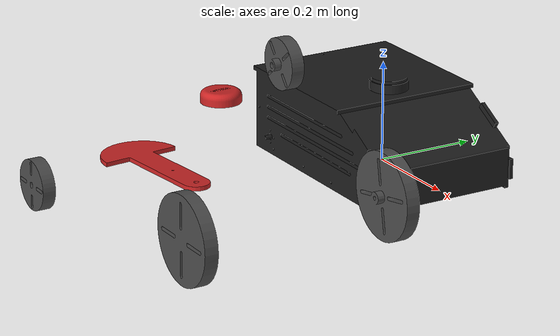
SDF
<?xml version='1.0'?>
<sdf version='1.7'>
  <model name='metal_detector_bot_sdf'>
    <link name='base_link'>
      <inertial>
        <pose>0.324698 -0.519407 0.192859 0 -0 0</pose>
        <mass>3.68397</mass>
        <inertia>
          <ixx>0.0209131</ixx>
          <ixy>6.08657e-07</ixy>
          <ixz>-0.00129762</ixz>
          <iyy>0.0391259</iyy>
          <iyz>1.5993e-08</iyz>
          <izz>0.0539535</izz>
        </inertia>
      </inertial>
      <self_collide>0</self_collide>
      <enable_wind>0</enable_wind>
      <kinematic>0</kinematic>
      <pose>0 0 0 0 -0 0</pose>
      <visual name='base_link_visual'>
        <pose>0 0 0 0 -0 0</pose>
        <geometry>
          <mesh>
            <scale>1 1 1</scale>
            <uri>/home/drbilal/catkin_ws/src/metal_detector_bot_urdf/meshes/base_link.STL</uri>
          </mesh>
        </geometry>
        <material>
          <script>
            <name>Gazebo/Black</name>
            <uri>__default__</uri>
          </script>
        </material>
        <transparency>0</transparency>
        <cast_shadows>1</cast_shadows>
      </visual>
      <collision name='base_link_collision'>
        <laser_retro>0</laser_retro>
        <max_contacts>10</max_contacts>
        <pose>0 0 0 0 -0 0</pose>
        <geometry>
          <mesh>
            <uri>/home/drbilal/catkin_ws/src/metal_detector_bot_urdf/meshes/base_link.STL</uri>
            <scale>1 1 1</scale>
          </mesh>
        </geometry>
        <surface>
          <friction>
            <ode>
              <mu>1</mu>
              <mu2>1</mu2>
              <fdir1>0 0 0</fdir1>
              <slip1>0</slip1>
              <slip2>0</slip2>
            </ode>
            <torsional>
              <coefficient>1</coefficient>
              <patch_radius>0</patch_radius>
              <surface_radius>0</surface_radius>
              <use_patch_radius>1</use_patch_radius>
              <ode>
                <slip>0</slip>
              </ode>
            </torsional>
          </friction>
          <bounce>
            <restitution_coefficient>0</restitution_coefficient>
            <threshold>1e+06</threshold>
          </bounce>
          <contact>
            <collide_without_contact>0</collide_without_contact>
            <collide_without_contact_bitmask>1</collide_without_contact_bitmask>
            <collide_bitmask>1</collide_bitmask>
            <ode>
              <soft_cfm>0</soft_cfm>
              <soft_erp>0.2</soft_erp>
              <kp>1e+13</kp>
              <kd>1</kd>
              <max_vel>0.01</max_vel>
              <min_depth>0</min_depth>
            </ode>
            <bullet>
              <split_impulse>1</split_impulse>
              <split_impulse_penetration_threshold>-0.01</split_impulse_penetration_threshold>
              <soft_cfm>0</soft_cfm>
              <soft_erp>0.2</soft_erp>
              <kp>1e+13</kp>
              <kd>1</kd>
            </bullet>
          </contact>
        </surface>
      </collision>
    </link>
    <link name='Back_left_wheel_link'>
      <pose>0.48383 -0.66997 0.14637 1.5708 -0 0</pose>
      <inertial>
        <pose>0 0 0.026259 0 -0 0</pose>
        <mass>0.498306</mass>
        <inertia>
          <ixx>0.000864069</ixx>
          <ixy>-1.53512e-21</ixy>
          <ixz>-3.3895e-20</ixz>
          <iyy>0.000864069</iyy>
          <iyz>-1.03163e-21</iyz>
          <izz>0.00167127</izz>
        </inertia>
      </inertial>
      <self_collide>0</self_collide>
      <enable_wind>0</enable_wind>
      <kinematic>0</kinematic>
      <visual name='Back_left_wheel_link_visual'>
        <pose>0 0 0 0 -0 0</pose>
        <geometry>
          <mesh>
            <scale>1 1 1</scale>
            <uri>/home/drbilal/catkin_ws/src/metal_detector_bot_urdf/meshes/Back_left_wheel_link.STL</uri>
          </mesh>
        </geometry>
        <material>
          <script>
            <name>Gazebo/DarkGrey</name>
            <uri>__default__</uri>
          </script>
        </material>
        <transparency>0</transparency>
        <cast_shadows>1</cast_shadows>
      </visual>
      <collision name='Back_left_wheel_link_collision'>
        <laser_retro>0</laser_retro>
        <max_contacts>10</max_contacts>
        <pose>0 0 0 0 -0 0</pose>
        <geometry>
          <mesh>
            <uri>/home/drbilal/catkin_ws/src/metal_detector_bot_urdf/meshes/Back_left_wheel_link.STL</uri>
            <scale>1 1 1</scale>
          </mesh>
        </geometry>
        <surface>
          <friction>
            <ode>
              <mu>1</mu>
              <mu2>1</mu2>
              <fdir1>0 0 0</fdir1>
              <slip1>0</slip1>
              <slip2>0</slip2>
            </ode>
            <torsional>
              <coefficient>1</coefficient>
              <patch_radius>0</patch_radius>
              <surface_radius>0</surface_radius>
              <use_patch_radius>1</use_patch_radius>
              <ode>
                <slip>0</slip>
              </ode>
            </torsional>
          </friction>
          <bounce>
            <restitution_coefficient>0</restitution_coefficient>
            <threshold>1e+06</threshold>
          </bounce>
          <contact>
            <collide_without_contact>0</collide_without_contact>
            <collide_without_contact_bitmask>1</collide_without_contact_bitmask>
            <collide_bitmask>1</collide_bitmask>
            <ode>
              <soft_cfm>0</soft_cfm>
              <soft_erp>0.2</soft_erp>
              <kp>1e+13</kp>
              <kd>1</kd>
              <max_vel>0.01</max_vel>
              <min_depth>0</min_depth>
            </ode>
            <bullet>
              <split_impulse>1</split_impulse>
              <split_impulse_penetration_threshold>-0.01</split_impulse_penetration_threshold>
              <soft_cfm>0</soft_cfm>
              <soft_erp>0.2</soft_erp>
              <kp>1e+13</kp>
              <kd>1</kd>
            </bullet>
          </contact>
        </surface>
      </collision>
    </link>
    <link name='Back_right_wheel_link'>
      <pose>0.48383 -0.32952 0.14637 1.5708 -1.3963 -3.14159</pose>
      <inertial>
        <pose>-0 0 -0.012891 0 -0 0</pose>
        <mass>0.498306</mass>
        <inertia>
          <ixx>0.000864069</ixx>
          <ixy>2.71051e-20</ixy>
          <ixz>-9.34239e-20</ixz>
          <iyy>0.000864069</iyy>
          <iyz>6.50888e-19</iyz>
          <izz>0.00167127</izz>
        </inertia>
      </inertial>
      <self_collide>0</self_collide>
      <enable_wind>0</enable_wind>
      <kinematic>0</kinematic>
      <visual name='Back_right_wheel_link_visual'>
        <pose>0 0 0 0 -0 0</pose>
        <geometry>
          <mesh>
            <scale>1 1 1</scale>
            <uri>/home/drbilal/catkin_ws/src/metal_detector_bot_urdf/meshes/Back_right_wheel_link.STL</uri>
          </mesh>
        </geometry>
        <material>
          <script>
            <name>Gazebo/DarkGrey</name>
            <uri>__default__</uri>
          </script>
        </material>
        <transparency>0</transparency>
        <cast_shadows>1</cast_shadows>
      </visual>
      <collision name='Back_right_wheel_link_collision'>
        <laser_retro>0</laser_retro>
        <max_contacts>10</max_contacts>
        <pose>0 0 0 0 -0 0</pose>
        <geometry>
          <mesh>
            <uri>/home/drbilal/catkin_ws/src/metal_detector_bot_urdf/meshes/Back_right_wheel_link.STL</uri>
            <scale>1 1 1</scale>
          </mesh>
        </geometry>
        <surface>
          <friction>
            <ode>
              <mu>1</mu>
              <mu2>1</mu2>
              <fdir1>0 0 0</fdir1>
              <slip1>0</slip1>
              <slip2>0</slip2>
            </ode>
            <torsional>
              <coefficient>1</coefficient>
              <patch_radius>0</patch_radius>
              <surface_radius>0</surface_radius>
              <use_patch_radius>1</use_patch_radius>
              <ode>
                <slip>0</slip>
              </ode>
            </torsional>
          </friction>
          <bounce>
            <restitution_coefficient>0</restitution_coefficient>
            <threshold>1e+06</threshold>
          </bounce>
          <contact>
            <collide_without_contact>0</collide_without_contact>
            <collide_without_contact_bitmask>1</collide_without_contact_bitmask>
            <collide_bitmask>1</collide_bitmask>
            <ode>
              <soft_cfm>0</soft_cfm>
              <soft_erp>0.2</soft_erp>
              <kp>1e+13</kp>
              <kd>1</kd>
              <max_vel>0.01</max_vel>
              <min_depth>0</min_depth>
            </ode>
            <bullet>
              <split_impulse>1</split_impulse>
              <split_impulse_penetration_threshold>-0.01</split_impulse_penetration_threshold>
              <soft_cfm>0</soft_cfm>
              <soft_erp>0.2</soft_erp>
              <kp>1e+13</kp>
              <kd>1</kd>
            </bullet>
          </contact>
        </surface>
      </collision>
    </link>
    <link name='Front_left_wheel_link'>
      <pose>0.13457 -0.68787 0.11335 1.5708 -0 0</pose>
      <inertial>
        <pose>-0 -0 0.026011 0 -0 0</pose>
        <mass>0.172261</mass>
        <inertia>
          <ixx>0.000112056</ixx>
          <ixy>1.02659e-21</ixy>
          <ixz>5.48525e-22</ixz>
          <iyy>0.000112056</iyy>
          <iyz>2.96385e-22</iyz>
          <izz>0.000202988</izz>
        </inertia>
      </inertial>
      <self_collide>0</self_collide>
      <enable_wind>0</enable_wind>
      <kinematic>0</kinematic>
      <visual name='Front_left_wheel_link_visual'>
        <pose>0 0 0 0 -0 0</pose>
        <geometry>
          <mesh>
            <scale>1 1 1</scale>
            <uri>/home/drbilal/catkin_ws/src/metal_detector_bot_urdf/meshes/Front_left_wheel_link.STL</uri>
          </mesh>
        </geometry>
        <material>
          <script>
            <name>Gazebo/DarkGrey</name>
            <uri>__default__</uri>
          </script>
        </material>
        <transparency>0</transparency>
        <cast_shadows>1</cast_shadows>
      </visual>
      <collision name='Front_left_wheel_link_collision'>
        <laser_retro>0</laser_retro>
        <max_contacts>10</max_contacts>
        <pose>0 0 0 0 -0 0</pose>
        <geometry>
          <mesh>
            <uri>/home/drbilal/catkin_ws/src/metal_detector_bot_urdf/meshes/Front_left_wheel_link.STL</uri>
            <scale>1 1 1</scale>
          </mesh>
        </geometry>
        <surface>
          <friction>
            <ode>
              <mu>1</mu>
              <mu2>1</mu2>
              <fdir1>0 0 0</fdir1>
              <slip1>0</slip1>
              <slip2>0</slip2>
            </ode>
            <torsional>
              <coefficient>1</coefficient>
              <patch_radius>0</patch_radius>
              <surface_radius>0</surface_radius>
              <use_patch_radius>1</use_patch_radius>
              <ode>
                <slip>0</slip>
              </ode>
            </torsional>
          </friction>
          <bounce>
            <restitution_coefficient>0</restitution_coefficient>
            <threshold>1e+06</threshold>
          </bounce>
          <contact>
            <collide_without_contact>0</collide_without_contact>
            <collide_without_contact_bitmask>1</collide_without_contact_bitmask>
            <collide_bitmask>1</collide_bitmask>
            <ode>
              <soft_cfm>0</soft_cfm>
              <soft_erp>0.2</soft_erp>
              <kp>1e+13</kp>
              <kd>1</kd>
              <max_vel>0.01</max_vel>
              <min_depth>0</min_depth>
            </ode>
            <bullet>
              <split_impulse>1</split_impulse>
              <split_impulse_penetration_threshold>-0.01</split_impulse_penetration_threshold>
              <soft_cfm>0</soft_cfm>
              <soft_erp>0.2</soft_erp>
              <kp>1e+13</kp>
              <kd>1</kd>
            </bullet>
          </contact>
        </surface>
      </collision>
    </link>
    <link name='Front_right_wheel_link'>
      <pose>0.13457 -0.31162 0.11335 1.5708 -0.87933 -3.14159</pose>
      <inertial>
        <pose>0 -0 -0.013139 0 -0 0</pose>
        <mass>0.172261</mass>
        <inertia>
          <ixx>0.000112056</ixx>
          <ixy>1.35525e-20</ixy>
          <ixz>-2.75192e-20</ixz>
          <iyy>0.000112056</iyy>
          <iyz>3.91039e-20</iyz>
          <izz>0.000202988</izz>
        </inertia>
      </inertial>
      <self_collide>0</self_collide>
      <enable_wind>0</enable_wind>
      <kinematic>0</kinematic>
      <visual name='Front_right_wheel_link_visual'>
        <pose>0 0 0 0 -0 0</pose>
        <geometry>
          <mesh>
            <scale>1 1 1</scale>
            <uri>/home/drbilal/catkin_ws/src/metal_detector_bot_urdf/meshes/Front_right_wheel_link.STL</uri>
          </mesh>
        </geometry>
        <material>
          <script>
            <name>Gazebo/DarkGrey</name>
            <uri>__default__</uri>
          </script>
        </material>
        <transparency>0</transparency>
        <cast_shadows>1</cast_shadows>
      </visual>
      <collision name='Front_right_wheel_link_collision'>
        <laser_retro>0</laser_retro>
        <max_contacts>10</max_contacts>
        <pose>0 0 0 0 -0 0</pose>
        <geometry>
          <mesh>
            <uri>/home/drbilal/catkin_ws/src/metal_detector_bot_urdf/meshes/Front_right_wheel_link.STL</uri>
            <scale>1 1 1</scale>
          </mesh>
        </geometry>
        <surface>
          <friction>
            <ode>
              <mu>1</mu>
              <mu2>1</mu2>
              <fdir1>0 0 0</fdir1>
              <slip1>0</slip1>
              <slip2>0</slip2>
            </ode>
            <torsional>
              <coefficient>1</coefficient>
              <patch_radius>0</patch_radius>
              <surface_radius>0</surface_radius>
              <use_patch_radius>1</use_patch_radius>
              <ode>
                <slip>0</slip>
              </ode>
            </torsional>
          </friction>
          <bounce>
            <restitution_coefficient>0</restitution_coefficient>
            <threshold>1e+06</threshold>
          </bounce>
          <contact>
            <collide_without_contact>0</collide_without_contact>
            <collide_without_contact_bitmask>1</collide_without_contact_bitmask>
            <collide_bitmask>1</collide_bitmask>
            <ode>
              <soft_cfm>0</soft_cfm>
              <soft_erp>0.2</soft_erp>
              <kp>1e+13</kp>
              <kd>1</kd>
              <max_vel>0.01</max_vel>
              <min_depth>0</min_depth>
            </ode>
            <bullet>
              <split_impulse>1</split_impulse>
              <split_impulse_penetration_threshold>-0.01</split_impulse_penetration_threshold>
              <soft_cfm>0</soft_cfm>
              <soft_erp>0.2</soft_erp>
              <kp>1e+13</kp>
              <kd>1</kd>
            </bullet>
          </contact>
        </surface>
      </collision>
    </link>
    <link name='Lidar_link'>
      <pose>0.28528 -0.51932 0.297 1.5777 -0.000188 -1.5436</pose>
      <inertial>
        <pose>-6.8e-05 0.012757 -0.002877 0 -0 0</pose>
        <mass>0.0553297</mass>
        <inertia>
          <ixx>1.77199e-05</ixx>
          <ixy>-5.03899e-09</ixy>
          <ixz>3.9065e-08</ixz>
          <iyy>3.29682e-05</iyy>
          <iyz>-2.52552e-07</iyz>
          <izz>1.80448e-05</izz>
        </inertia>
      </inertial>
      <self_collide>0</self_collide>
      <enable_wind>0</enable_wind>
      <kinematic>0</kinematic>
      <visual name='Lidar_link_visual'>
        <pose>0 0 0 0 -0 0</pose>
        <geometry>
          <mesh>
            <scale>1 1 1</scale>
            <uri>/home/drbilal/catkin_ws/src/metal_detector_bot_urdf/meshes/Lidar_link.STL</uri>
          </mesh>
        </geometry>
        <material>
          <script>
            <name>Gazebo/Red</name>
            <uri>__default__</uri>
          </script>
        </material>
        <transparency>0</transparency>
        <cast_shadows>1</cast_shadows>
      </visual>
      <collision name='Lidar_link_collision'>
        <laser_retro>0</laser_retro>
        <max_contacts>10</max_contacts>
        <pose>0 0 0 0 -0 0</pose>
        <geometry>
          <mesh>
            <uri>/home/drbilal/catkin_ws/src/metal_detector_bot_urdf/meshes/Lidar_link.STL</uri>
            <scale>1 1 1</scale>
          </mesh>
        </geometry>
        <surface>
          <friction>
            <ode>
              <mu>1</mu>
              <mu2>1</mu2>
              <fdir1>0 0 0</fdir1>
              <slip1>0</slip1>
              <slip2>0</slip2>
            </ode>
            <torsional>
              <coefficient>1</coefficient>
              <patch_radius>0</patch_radius>
              <surface_radius>0</surface_radius>
              <use_patch_radius>1</use_patch_radius>
              <ode>
                <slip>0</slip>
              </ode>
            </torsional>
          </friction>
          <bounce>
            <restitution_coefficient>0</restitution_coefficient>
            <threshold>1e+06</threshold>
          </bounce>
          <contact>
            <collide_without_contact>0</collide_without_contact>
            <collide_without_contact_bitmask>1</collide_without_contact_bitmask>
            <collide_bitmask>1</collide_bitmask>
            <ode>
              <soft_cfm>0</soft_cfm>
              <soft_erp>0.2</soft_erp>
              <kp>1e+13</kp>
              <kd>1</kd>
              <max_vel>0.01</max_vel>
              <min_depth>0</min_depth>
            </ode>
            <bullet>
              <split_impulse>1</split_impulse>
              <split_impulse_penetration_threshold>-0.01</split_impulse_penetration_threshold>
              <soft_cfm>0</soft_cfm>
              <soft_erp>0.2</soft_erp>
              <kp>1e+13</kp>
              <kd>1</kd>
            </bullet>
          </contact>
        </surface>
      </collision>
    </link>
    <link name='Metal_detector_plate_link'>
      <pose>0.19318 -0.51932 0.10936 1.5701 -0.006896 0.093846</pose>
      <inertial>
        <pose>-0.140649 0.004 -0 0 -0 0</pose>
        <mass>0.150226</mass>
        <inertia>
          <ixx>0.000116851</ixx>
          <ixy>-1.76231e-19</ixy>
          <ixz>-2.71559e-18</ixz>
          <iyy>0.00103679</iyy>
          <iyz>-9.96731e-21</iyz>
          <izz>0.000921539</izz>
        </inertia>
      </inertial>
      <self_collide>0</self_collide>
      <enable_wind>0</enable_wind>
      <kinematic>0</kinematic>
      <visual name='Metal_detector_plate_link_visual'>
        <pose>0 0 0 0 -0 0</pose>
        <geometry>
          <mesh>
            <scale>1 1 1</scale>
            <uri>/home/drbilal/catkin_ws/src/metal_detector_bot_urdf/meshes/Metal_detector_plate_link.STL</uri>
          </mesh>
        </geometry>
        <material>
          <script>
            <name>Gazebo/Red</name>
            <uri>__default__</uri>
          </script>
        </material>
        <transparency>0</transparency>
        <cast_shadows>1</cast_shadows>
      </visual>
      <collision name='Metal_detector_plate_link_collision'>
        <laser_retro>0</laser_retro>
        <max_contacts>10</max_contacts>
        <pose>0 0 0 0 -0 0</pose>
        <geometry>
          <mesh>
            <uri>/home/drbilal/catkin_ws/src/metal_detector_bot_urdf/meshes/Metal_detector_plate_link.STL</uri>
            <scale>1 1 1</scale>
          </mesh>
        </geometry>
        <surface>
          <friction>
            <ode>
              <mu>1</mu>
              <mu2>1</mu2>
              <fdir1>0 0 0</fdir1>
              <slip1>0</slip1>
              <slip2>0</slip2>
            </ode>
            <torsional>
              <coefficient>1</coefficient>
              <patch_radius>0</patch_radius>
              <surface_radius>0</surface_radius>
              <use_patch_radius>1</use_patch_radius>
              <ode>
                <slip>0</slip>
              </ode>
            </torsional>
          </friction>
          <bounce>
            <restitution_coefficient>0</restitution_coefficient>
            <threshold>1e+06</threshold>
          </bounce>
          <contact>
            <collide_without_contact>0</collide_without_contact>
            <collide_without_contact_bitmask>1</collide_without_contact_bitmask>
            <collide_bitmask>1</collide_bitmask>
            <ode>
              <soft_cfm>0</soft_cfm>
              <soft_erp>0.2</soft_erp>
              <kp>1e+13</kp>
              <kd>1</kd>
              <max_vel>0.01</max_vel>
              <min_depth>0</min_depth>
            </ode>
            <bullet>
              <split_impulse>1</split_impulse>
              <split_impulse_penetration_threshold>-0.01</split_impulse_penetration_threshold>
              <soft_cfm>0</soft_cfm>
              <soft_erp>0.2</soft_erp>
              <kp>1e+13</kp>
              <kd>1</kd>
            </bullet>
          </contact>
        </surface>
      </collision>
    </link>
    <joint name='Back_left_wheel_joint' type='revolute'>
      <parent>base_link</parent>
      <child>Back_left_wheel_link</child>
      <pose>0 0 0 0 -0 0</pose>
      <axis>
        <xyz>0 0 1</xyz>
        <limit>
          <lower>0</lower>
          <upper>0</upper>
          <effort>0</effort>
          <velocity>0</velocity>
        </limit>
        <dynamics>
          <spring_reference>0</spring_reference>
          <spring_stiffness>0</spring_stiffness>
          <damping>0</damping>
          <friction>0</friction>
        </dynamics>
      </axis>
      <physics>
        <ode>
          <limit>
            <cfm>0</cfm>
            <erp>0.2</erp>
          </limit>
          <suspension>
            <cfm>0</cfm>
            <erp>0.2</erp>
          </suspension>
        </ode>
      </physics>
    </joint>
    <joint name='Back_right_wheel_joint' type='revolute'>
      <parent>base_link</parent>
      <child>Back_right_wheel_link</child>
      <pose>0 0 0 0 -0 0</pose>
      <axis>
        <xyz>0 0 1</xyz>
        <limit>
          <lower>0</lower>
          <upper>0</upper>
          <effort>0</effort>
          <velocity>0</velocity>
        </limit>
        <dynamics>
          <spring_reference>0</spring_reference>
          <spring_stiffness>0</spring_stiffness>
          <damping>0</damping>
          <friction>0</friction>
        </dynamics>
      </axis>
      <physics>
        <ode>
          <limit>
            <cfm>0</cfm>
            <erp>0.2</erp>
          </limit>
          <suspension>
            <cfm>0</cfm>
            <erp>0.2</erp>
          </suspension>
        </ode>
      </physics>
    </joint>
    <joint name='Front_left_wheel_joint' type='revolute'>
      <parent>base_link</parent>
      <child>Front_left_wheel_link</child>
      <pose>0 0 0 0 -0 0</pose>
      <axis>
        <xyz>0 0 1</xyz>
        <limit>
          <lower>0</lower>
          <upper>0</upper>
          <effort>0</effort>
          <velocity>0</velocity>
        </limit>
        <dynamics>
          <spring_reference>0</spring_reference>
          <spring_stiffness>0</spring_stiffness>
          <damping>0</damping>
          <friction>0</friction>
        </dynamics>
      </axis>
      <physics>
        <ode>
          <limit>
            <cfm>0</cfm>
            <erp>0.2</erp>
          </limit>
          <suspension>
            <cfm>0</cfm>
            <erp>0.2</erp>
          </suspension>
        </ode>
      </physics>
    </joint>
    <joint name='Front_right_wheel_joint' type='revolute'>
      <parent>base_link</parent>
      <child>Front_right_wheel_link</child>
      <pose>-0 -0 0 0 -0 0</pose>
      <axis>
        <xyz>0 0 1</xyz>
        <limit>
          <lower>0</lower>
          <upper>0</upper>
          <effort>0</effort>
          <velocity>0</velocity>
        </limit>
        <dynamics>
          <spring_reference>0</spring_reference>
          <spring_stiffness>0</spring_stiffness>
          <damping>0</damping>
          <friction>0</friction>
        </dynamics>
      </axis>
      <physics>
        <ode>
          <limit>
            <cfm>0</cfm>
            <erp>0.2</erp>
          </limit>
          <suspension>
            <cfm>0</cfm>
            <erp>0.2</erp>
          </suspension>
        </ode>
      </physics>
    </joint>
    <joint name='Lidar_joint' type='revolute'>
      <parent>base_link</parent>
      <child>Lidar_link</child>
      <pose>0 0 -0 0 -0 0</pose>
      <axis>
        <xyz>0 1 0</xyz>
        <limit>
          <lower>0</lower>
          <upper>0</upper>
          <effort>0</effort>
          <velocity>0</velocity>
        </limit>
        <dynamics>
          <spring_reference>0</spring_reference>
          <spring_stiffness>0</spring_stiffness>
          <damping>0</damping>
          <friction>0</friction>
        </dynamics>
      </axis>
      <physics>
        <ode>
          <limit>
            <cfm>0</cfm>
            <erp>0.2</erp>
          </limit>
          <suspension>
            <cfm>0</cfm>
            <erp>0.2</erp>
          </suspension>
        </ode>
      </physics>
    </joint>
    <joint name='Metal_detector_plate_joint' type='revolute'>
      <parent>base_link</parent>
      <child>Metal_detector_plate_link</child>
      <pose>0 0 0 0 -0 0</pose>
      <axis>
        <xyz>0 1 0</xyz>
        <limit>
          <lower>0</lower>
          <upper>0</upper>
          <effort>0</effort>
          <velocity>0</velocity>
        </limit>
        <dynamics>
          <spring_reference>0</spring_reference>
          <spring_stiffness>0</spring_stiffness>
          <damping>0</damping>
          <friction>0</friction>
        </dynamics>
      </axis>
      <physics>
        <ode>
          <limit>
            <cfm>0</cfm>
            <erp>0.2</erp>
          </limit>
          <suspension>
            <cfm>0</cfm>
            <erp>0.2</erp>
          </suspension>
        </ode>
      </physics>
    </joint>
    <static>0</static>
    <allow_auto_disable>1</allow_auto_disable>
  </model>
</sdf>
